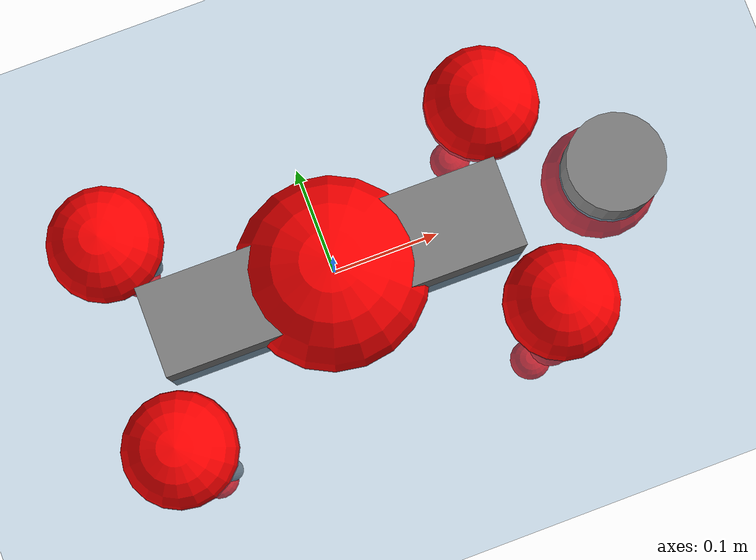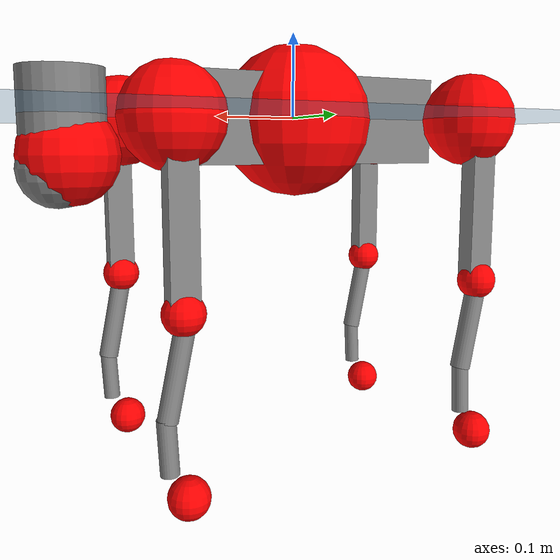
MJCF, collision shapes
<mujoco model="go2">
  <compiler angle="radian" assetdir="assets" balanceinertia="true" inertiafromgeom="false"/>

  <option timestep="0.005" density="1.2" viscosity="2e-05"/>

  <size nkey="1"/>

  <visual>
    <quality shadowsize="8192"/>
    <map shadowclip="0.5"/>
  </visual>

  <default>
    <default class="/">
      <geom contype="0" conaffinity="0" group="1" solref="-1000 -80"/>
      <site size="0.01 0.005 0.005" group="5"/>
      <general forcelimited="true" biastype="affine" gainprm="20" biasprm="0 -20 -0.5"/>
      <default class="go2">
        <joint armature="0.01" damping="0.01" frictionloss="0.2"/>
        <geom condim="1" margin="0.001"/>
        <default class="visual">
          <geom type="mesh" group="2"/>
        </default>
        <default class="collision">
          <geom group="3"/>
          <default class="foot">
            <geom size="0.022 0 0" condim="6" priority="1" friction="0.8 0.02 0.01" solimp="0.015 1 0.022"/>
          </default>
        </default>
        <default class="reward_collision_sphere">
          <geom group="5" rgba="1 0 0 1"/>
        </default>
      </default>
    </default>
  </default>

  <asset>
    <texture type="skybox" colorspace="auto" name="//unnamed_texture_0" builtin="gradient" rgb1="0.95 0.95 0.95" rgb2="0.95 0.95 0.95" width="100" height="600"/>
    <texture type="2d" colorspace="auto" name="texplane" builtin="checker" rgb1="0.345 0.575 0.748" rgb2="0.345 0.575 0.748" markrgb="1 1 1" width="512" height="512"/>
    <material name="MatPlane" class="/" texture="texplane" texuniform="true" texrepeat="2 2" specular="0.9"/>
    <material name="metal" class="/" rgba="0.9 0.95 0.95 1"/>
    <material name="black" class="/" rgba="0 0 0 1"/>
    <material name="white" class="/"/>
    <material name="gray" class="/" rgba="0.671705 0.692426 0.77427 1"/>
    <mesh name="base_0" class="/" file="base_0.obj"/>
    <mesh name="base_1" class="/" file="base_1.obj"/>
    <mesh name="base_2" class="/" file="base_2.obj"/>
    <mesh name="base_3" class="/" file="base_3.obj"/>
    <mesh name="base_4" class="/" file="base_4.obj"/>
    <mesh name="hip_0" class="/" file="hip_0.obj"/>
    <mesh name="hip_1" class="/" file="hip_1.obj"/>
    <mesh name="thigh_0" class="/" file="thigh_0.obj"/>
    <mesh name="thigh_1" class="/" file="thigh_1.obj"/>
    <mesh name="thigh_mirror_0" class="/" file="thigh_mirror_0.obj"/>
    <mesh name="thigh_mirror_1" class="/" file="thigh_mirror_1.obj"/>
    <mesh name="calf_0" class="/" file="calf_0.obj"/>
    <mesh name="calf_1" class="/" file="calf_1.obj"/>
    <mesh name="calf_mirror_0" class="/" file="calf_mirror_0.obj"/>
    <mesh name="calf_mirror_1" class="/" file="calf_mirror_1.obj"/>
    <mesh name="foot" class="/" file="foot.obj"/>
  </asset>

  <worldbody>
    <geom name="floor" class="/" size="100 100 0.125" type="plane" group="0" material="MatPlane"/>
    <light name="toplight_shadow" class="/" pos="0 0 5" dir="0.0990148 0.0990148 -0.990148" type="directional" ambient="0.04 0.04 0.04" diffuse="0.55 0.55 0.55" specular="0.12 0.12 0.12"/>
    <light name="toplight_fill" class="/" pos="0 0 5" dir="0.0990148 0.0990148 -0.990148" type="directional" castshadow="false" ambient="0.04 0.04 0.04" diffuse="0.3 0.3 0.3" specular="0.08 0.08 0.08"/>
    <body name="trunk" childclass="go2" pos="-0.00233068 0.000112466 -0.002814" quat="0.999999 8.23017e-06 0.00015246 -0.00131018">
      <inertial pos="0.0171696 0.0024112 -0.00585744" quat="-0.00902662 0.713229 -0.00336538 0.700865" mass="5.2058" diaginertia="0.0858153 0.046751 0.0147762"/>
      <joint name="//unnamed_joint_0" type="free" armature="0" damping="0" frictionloss="0"/>
      <geom name="//unnamed_geom_1" class="visual" material="black" mesh="base_0"/>
      <geom name="//unnamed_geom_2" class="visual" material="black" mesh="base_1"/>
      <geom name="//unnamed_geom_3" class="visual" material="black" mesh="base_2"/>
      <geom name="//unnamed_geom_4" class="visual" material="white" mesh="base_3"/>
      <geom name="//unnamed_geom_5" class="visual" material="gray" mesh="base_4"/>
      <geom name="trunk_1" class="collision" size="0.170573 0.042394 0.0516889" type="box"/>
      <geom name="trunk_2" class="collision" size="0.0453411 0.040807" pos="0.272031 0 0.00903261" type="cylinder"/>
      <geom name="trunk_3" class="collision" size="0.0426207" pos="0.279667 0 -0.0541957"/>
      <geom name="//unnamed_geom_9" class="reward_collision_sphere" size="0.0906823"/>
      <geom name="//unnamed_geom_10" class="reward_collision_sphere" size="0.0544094" pos="0.267258 0 -0.0406468"/>
      <site name="imu" pos="-0.0104367 0.0036698 0.0260672" size="0.00906823"/>
      <camera name="track" pos="0 -1.72543 0" quat="0.707107 0.707107 0 0" mode="trackcom"/>
      <camera name="ego_camera" pos="0.297802 0 0.0406468" quat="-0.5 -0.5 0.5 0.5"/>
      <body name="FL_hip" pos="0.184324 0.0400206 -0.00249571" quat="1 4.64847e-05 -4.12269e-05 1.64282e-05">
        <inertial pos="-0.00797778 0.00106385 -0.00182235" quat="0.494923 0.501388 0.49777 0.505852" mass="0.507955" diaginertia="0.000704111 0.000288054 0.000300607"/>
        <joint name="FL_hip_joint" pos="0 0 0" axis="0.99997 -0.00635173 0.0043667" range="-1.03386 1.0377" armature="0.010076" damping="0.0120742" frictionloss="0.179127"/>
        <geom name="//unnamed_geom_11" class="visual" material="metal" mesh="hip_0"/>
        <geom name="//unnamed_geom_12" class="visual" material="gray" mesh="hip_1"/>
        <geom name="//unnamed_geom_13" class="collision" size="0.0417139 0.0181365" pos="0 0.069017 0" quat="0.707107 0.707107 0 0" type="cylinder"/>
        <geom name="//unnamed_geom_14" class="reward_collision_sphere" size="0.0544094" pos="0 0.0603899 0"/>
        <body name="FL_thigh" pos="0.00063575 0.0816338 -0.00201302" quat="1 -0.000465277 -6.39972e-05 -0.00018785">
          <inertial pos="-0.00328545 -0.0196786 -0.0287815" quat="0.828007 0.0928856 -0.0152196 0.552761" mass="0.841885" diaginertia="0.00468625 0.00266018 0.000527165"/>
          <joint name="FL_thigh_joint" pos="0 0 0" axis="0.0154086 0.999791 0.0134568" stiffness="0.0147205" range="-1.55902 3.48001" armature="0.00785058" damping="0.01327" frictionloss="0.179767"/>
          <geom name="//unnamed_geom_15" class="visual" material="metal" mesh="thigh_0"/>
          <geom name="//unnamed_geom_16" class="visual" material="gray" mesh="thigh_1"/>
          <geom name="//unnamed_geom_17" class="collision" size="0.0965766 0.0111086 0.015416" pos="0 0 -0.0961973" quat="0.707107 0 0.707107 0" type="box"/>
          <body name="FL_calf" pos="-0.000696198 7.09504e-05 -0.190255" quat="1 -1.70791e-05 -0.000207906 0.000194671">
            <inertial pos="0.00391119 -0.00325609 -0.125141" quat="0.709831 -0.000185942 -0.00568646 0.704349" mass="0.179971" diaginertia="0.00120628 0.000682209 3.18625e-05"/>
            <joint name="FL_calf_joint" pos="0 0 0" axis="0.0012354 0.999984 -0.00560994" stiffness="0.00978321" range="-2.67381 -0.860657" armature="0.00898135" damping="0.00815334" frictionloss="0.183152"/>
            <geom name="//unnamed_geom_18" class="visual" material="gray" mesh="calf_0"/>
            <geom name="//unnamed_geom_19" class="visual" material="black" mesh="calf_1"/>
            <geom name="FL_calf0" class="collision" size="0.0108819 0.0544094" pos="0.00763596 0 -0.0541957" quat="0.994493 0 -0.104807 0" type="cylinder"/>
            <geom name="//unnamed_geom_21" class="collision" size="0.00997505 0.0294717" pos="0.0190899 0 -0.133683" quat="0.999688 0 0.0249974 0" type="cylinder"/>
            <geom name="//unnamed_geom_22" class="visual" pos="0 0 -0.192395" quat="1 0 0 0" material="black" mesh="foot"/>
            <geom name="FL_foot" class="foot" size="0.0206472" pos="-0.00190899 0 -0.192395"/>
            <geom name="//unnamed_geom_24" class="reward_collision_sphere" size="0.0226706"/>
            <geom name="//unnamed_geom_25" class="reward_collision_sphere" size="0.0226706" pos="-0.00190899 0 -0.192395"/>
            <site name="FL_foot" class="foot" pos="-0.00190899 0 -0.192395" size="0.00906823"/>
          </body>
        </body>
      </body>
      <body name="FR_hip" pos="0.187513 -0.0371128 0.000407084" quat="1 -0.000507906 0.000137943 -0.00012178">
        <inertial pos="-0.00674362 -0.00404084 -0.00142512" quat="0.499293 0.505801 0.496763 0.498095" mass="0.504098" diaginertia="0.000678044 0.000295305 0.000292153"/>
        <joint name="FR_hip_joint" pos="0 0 0" axis="0.999999 0.000920209 -0.000625068" range="-1.00372 1.03009" armature="0.00898717" damping="0.0149974" frictionloss="0.202159"/>
        <geom name="//unnamed_geom_26" class="visual" pos="0 -3.53244e-10 -1.51514e-08" quat="4.63268e-05 1 0 0" material="metal" mesh="hip_0"/>
        <geom name="//unnamed_geom_27" class="visual" pos="0 -5.72651e-10 3.74752e-08" quat="4.63268e-05 1 0 0" material="gray" mesh="hip_1"/>
        <geom name="//unnamed_geom_28" class="collision" size="0.0417139 0.0181365" pos="0 -0.069017 0" quat="0.707107 0.707107 0 0" type="cylinder"/>
        <geom name="//unnamed_geom_29" class="reward_collision_sphere" size="0.0544094" pos="0 -0.0603899 0"/>
        <body name="FR_thigh" pos="0.00280037 -0.0825238 -0.00123642" quat="0.999999 0.000669956 0.000759395 -0.000457529">
          <inertial pos="-0.00306444 0.0191692 -0.0296894" quat="0.548102 -0.0219551 0.0859398 0.831695" mass="0.885576" diaginertia="0.00456848 0.00280876 0.000531495"/>
          <joint name="FR_thigh_joint" pos="0 0 0" axis="0.0042347 -0.99999 0.00165785" range="-3.49755 1.60801" armature="0.00832149" damping="0.0104232" frictionloss="0.193061"/>
          <geom name="//unnamed_geom_30" class="visual" material="metal" mesh="thigh_mirror_0"/>
          <geom name="//unnamed_geom_31" class="visual" material="gray" mesh="thigh_mirror_1"/>
          <geom name="//unnamed_geom_32" class="collision" size="0.0965766 0.0111086 0.015416" pos="0 0 -0.0961973" quat="0.707107 0 0.707107 0" type="box"/>
          <body name="FR_calf" pos="-0.000636013 -0.00135141 -0.191264" quat="1 8.7797e-05 -9.33182e-05 -0.000132436">
            <inertial pos="0.00696359 5.21579e-05 -0.128718" quat="0.710263 -0.0141805 0.00468985 0.703778" mass="0.17769" diaginertia="0.00123491 0.000702904 3.20149e-05"/>
            <joint name="FR_calf_joint" pos="0 0 0" axis="-0.00241097 -0.999908 0.013341" range="0.825601 2.66279" armature="0.0100666" damping="0.0137179" frictionloss="0.179474"/>
            <geom name="//unnamed_geom_33" class="visual" material="gray" mesh="calf_mirror_0"/>
            <geom name="//unnamed_geom_34" class="visual" material="black" mesh="calf_mirror_1"/>
            <geom name="FR_calf0" class="collision" size="0.0117887 0.0544094" pos="0.00954495 0 -0.0541957" quat="0.995004 0 -0.0998334 0" type="cylinder"/>
            <geom name="//unnamed_geom_36" class="collision" size="0.00997505 0.0294717" pos="0.0190899 0 -0.133683" quat="0.999688 0 0.0249974 0" type="cylinder"/>
            <geom name="//unnamed_geom_37" class="visual" pos="0 0 -0.192395" quat="1 0 0 0" material="black" mesh="foot"/>
            <geom name="FR_foot" class="foot" size="0.0189847" pos="-0.00190899 0 -0.192395"/>
            <geom name="//unnamed_geom_39" class="reward_collision_sphere" size="0.0226706"/>
            <geom name="//unnamed_geom_40" class="reward_collision_sphere" size="0.0226706" pos="-0.00190899 0 -0.192395"/>
            <site name="FR_foot" class="foot" pos="-0.00190899 0 -0.192395" size="0.00906823"/>
          </body>
        </body>
      </body>
      <body name="RL_hip" pos="-0.18572 0.0367448 0.000595937" quat="1 -0.000100073 0.000241368 0.000147886">
        <inertial pos="0.00490436 0.00240923 0.000207765" quat="0.505447 0.498372 0.49701 0.49913" mass="0.511865" diaginertia="0.000713609 0.000276662 0.000286555"/>
        <joint name="RL_hip_joint" pos="0 0 0" axis="-1 -6.32152e-05 2.76228e-05" stiffness="0.00837884" range="-1.05485 1.06487" armature="0.0091193" damping="0" frictionloss="0.18922"/>
        <geom name="//unnamed_geom_41" class="visual" pos="-4.46322e-10 0 -8.74893e-08" quat="4.63268e-05 0 1 0" material="metal" mesh="hip_0"/>
        <geom name="//unnamed_geom_42" class="visual" pos="-7.23541e-10 0 -7.75906e-08" quat="4.63268e-05 0 1 0" material="gray" mesh="hip_1"/>
        <geom name="//unnamed_geom_43" class="collision" size="0.0417139 0.0181365" pos="0 0.069017 0" quat="0.707107 0.707107 0 0" type="cylinder"/>
        <geom name="//unnamed_geom_44" class="reward_collision_sphere" size="0.0544094" pos="0 0.0603899 0"/>
        <body name="RL_thigh" pos="-0.000983652 0.0795065 0.00216475" quat="1 2.21816e-05 -8.71719e-06 6.33524e-05">
          <inertial pos="-0.00468337 -0.0191964 -0.0289071" quat="0.829094 0.0881427 -0.0233913 0.551622" mass="0.880009" diaginertia="0.00484853 0.00285212 0.000540919"/>
          <joint name="RL_thigh_joint" pos="0 0 0" axis="0.00790742 0.999964 -0.00317428" range="-0.540237 4.51614" armature="0.0101485" damping="0.00161946" frictionloss="0.185589"/>
          <geom name="//unnamed_geom_45" class="visual" material="metal" mesh="thigh_0"/>
          <geom name="//unnamed_geom_46" class="visual" material="gray" mesh="thigh_1"/>
          <geom name="//unnamed_geom_47" class="collision" size="0.0965766 0.0111086 0.015416" pos="0 0 -0.0961973" quat="0.707107 0 0.707107 0" type="box"/>
          <body name="RL_calf" pos="-0.0021306 0.00182823 -0.194945" quat="1 3.03709e-05 -0.000165528 0.00052029">
            <inertial pos="0.00864894 -0.00329073 -0.125237" quat="0.709821 0.00347146 -0.013213 0.704249" mass="0.175923" diaginertia="0.00117838 0.000725534 3.11535e-05"/>
            <joint name="RL_calf_joint" pos="0 0 0" axis="0.00108059 0.999979 0.00640651" stiffness="0.00575979" range="-2.68104 -0.834605" armature="0.00903032" damping="0" frictionloss="0.206305"/>
            <geom name="//unnamed_geom_48" class="visual" material="gray" mesh="calf_0"/>
            <geom name="//unnamed_geom_49" class="visual" material="black" mesh="calf_1"/>
            <geom name="RL_calf0" class="collision" size="0.0117887 0.0544094" pos="0.00954495 0 -0.0541957" quat="0.995004 0 -0.0998334 0" type="cylinder"/>
            <geom name="//unnamed_geom_51" class="collision" size="0.00997505 0.0294717" pos="0.0190899 0 -0.133683" quat="0.999688 0 0.0249974 0" type="cylinder"/>
            <geom name="//unnamed_geom_52" class="visual" pos="0 0 -0.192395" quat="1 0 0 0" material="black" mesh="foot"/>
            <geom name="RL_foot" class="foot" size="0.0207702" pos="-0.00190899 0 -0.192395"/>
            <geom name="//unnamed_geom_54" class="reward_collision_sphere" size="0.0226706"/>
            <geom name="//unnamed_geom_55" class="reward_collision_sphere" size="0.0226706" pos="-0.00190899 0 -0.192395"/>
            <site name="RL_foot" class="foot" pos="-0.00190899 0 -0.192395" size="0.00906823"/>
          </body>
        </body>
      </body>
      <body name="RR_hip" pos="-0.184416 -0.0427196 -0.00154232" quat="0.999999 0.000975104 -0.000903142 -0.000638455">
        <inertial pos="0.00436712 -0.000423107 -0.00253923" quat="0.498745 0.497646 0.498595 0.50498" mass="0.524602" diaginertia="0.000698227 0.000282759 0.000288799"/>
        <joint name="RR_hip_joint" pos="0 0 0" axis="-0.999918 -0.00305003 0.0123985" range="-0.996062 1.01278" armature="0.00786125" damping="0.00806134" frictionloss="0.203155"/>
        <geom name="//unnamed_geom_56" class="visual" pos="4.43144e-10 -3.53244e-10 -7.2338e-08" quat="2.14617e-09 4.63268e-05 4.63268e-05 -1" material="metal" mesh="hip_0"/>
        <geom name="//unnamed_geom_57" class="visual" pos="7.314e-10 -5.72651e-10 -1.15066e-07" quat="2.14617e-09 4.63268e-05 4.63268e-05 -1" material="gray" mesh="hip_1"/>
        <geom name="//unnamed_geom_58" class="collision" size="0.0417139 0.0181365" pos="0 -0.069017 0" quat="0.707107 0.707107 0 0" type="cylinder"/>
        <geom name="//unnamed_geom_59" class="reward_collision_sphere" size="0.0544094" pos="0 -0.0603899 0"/>
        <body name="RR_thigh" pos="0.00103631 -0.0823696 -5.5448e-06" quat="1 8.9704e-05 -0.000183659 -0.000105752">
          <inertial pos="-0.00607135 0.0216503 -0.0296934" quat="0.550727 -0.0198869 0.0844002 0.830169" mass="0.823693" diaginertia="0.00477669 0.00275392 0.000528781"/>
          <joint name="RR_thigh_joint" pos="0 0 0" axis="0.0005584 -0.999999 0.00160355" stiffness="0.00590597" range="-4.54465 0.541825" armature="0.00876966" damping="0.0174082" frictionloss="0.16693"/>
          <geom name="//unnamed_geom_60" class="visual" material="metal" mesh="thigh_mirror_0"/>
          <geom name="//unnamed_geom_61" class="visual" material="gray" mesh="thigh_mirror_1"/>
          <geom name="//unnamed_geom_62" class="collision" size="0.0965766 0.0111086 0.015416" pos="0 0 -0.0961973" quat="0.707107 0 0.707107 0" type="box"/>
          <body name="RR_calf" pos="0.000231435 0.000179255 -0.19288" quat="1 0.000101944 1.99241e-05 -2.28739e-05">
            <inertial pos="0.00824259 0.000758461 -0.128428" quat="0.703119 -0.00531452 0.000688443 0.711052" mass="0.169686" diaginertia="0.00112748 0.000683439 3.05809e-05"/>
            <joint name="RR_calf_joint" pos="0 0 0" axis="-0.0019981 -0.999995 -0.00251859" range="0.850163 2.77896" armature="0.00794379" damping="0.01814" frictionloss="0.187339"/>
            <geom name="//unnamed_geom_63" class="visual" material="gray" mesh="calf_mirror_0"/>
            <geom name="//unnamed_geom_64" class="visual" material="black" mesh="calf_mirror_1"/>
            <geom name="RR_calf0" class="collision" size="0.0117887 0.0544094" pos="0.00954495 0 -0.0541957" quat="0.995004 0 -0.0998334 0" type="cylinder"/>
            <geom name="//unnamed_geom_66" class="collision" size="0.00997505 0.0294717" pos="0.0190899 0 -0.133683" quat="0.999688 0 0.0249974 0" type="cylinder"/>
            <geom name="//unnamed_geom_67" class="visual" pos="0 0 -0.192395" quat="1 0 0 0" material="black" mesh="foot"/>
            <geom name="RR_foot" class="foot" size="0.0169923" pos="-0.00190899 0 -0.192395"/>
            <geom name="//unnamed_geom_69" class="reward_collision_sphere" size="0.0226706"/>
            <geom name="//unnamed_geom_70" class="reward_collision_sphere" size="0.0226706" pos="-0.00190899 0 -0.192395"/>
            <site name="RR_foot" class="foot" pos="-0.00190899 0 -0.192395" size="0.00906823"/>
          </body>
        </body>
      </body>
    </body>
  </worldbody>

  <contact>
    <pair class="/" geom1="floor" geom2="FL_foot" name="//unnamed_contact_0"/>
    <pair class="/" geom1="floor" geom2="FR_foot" name="//unnamed_contact_1"/>
    <pair class="/" geom1="floor" geom2="RL_foot" name="//unnamed_contact_2"/>
    <pair class="/" geom1="floor" geom2="RR_foot" name="//unnamed_contact_3"/>
  </contact>

  <actuator>
    <general name="FL_hip" class="/" joint="FL_hip_joint" forcerange="-21.7427 21.7427" gainprm="17.3339" biasprm="0 -17.3339 -0.470343"/>
    <general name="FL_thigh" class="/" joint="FL_thigh_joint" forcerange="-22.579 22.579" gainprm="17.3339" biasprm="0 -17.3339 -0.470343"/>
    <general name="FL_calf" class="/" joint="FL_calf_joint" forcerange="-40.0287 40.0287" gainprm="17.3339" biasprm="0 -17.3339 -0.470343"/>
    <general name="FR_hip" class="/" joint="FR_hip_joint" forcerange="-20.9951 20.9951" gainprm="17.3339" biasprm="0 -17.3339 -0.470343"/>
    <general name="FR_thigh" class="/" joint="FR_thigh_joint" forcerange="-23.613 23.613" gainprm="17.3339" biasprm="0 -17.3339 -0.470343"/>
    <general name="FR_calf" class="/" joint="FR_calf_joint" forcerange="-38.6592 38.6592" gainprm="17.3339" biasprm="0 -17.3339 -0.470343"/>
    <general name="RL_hip" class="/" joint="RL_hip_joint" forcerange="-21.8244 21.8244" gainprm="17.3339" biasprm="0 -17.3339 -0.470343"/>
    <general name="RL_thigh" class="/" joint="RL_thigh_joint" forcerange="-23.7746 23.7746" gainprm="17.3339" biasprm="0 -17.3339 -0.470343"/>
    <general name="RL_calf" class="/" joint="RL_calf_joint" forcerange="-39.4878 39.4878" gainprm="17.3339" biasprm="0 -17.3339 -0.470343"/>
    <general name="RR_hip" class="/" joint="RR_hip_joint" forcerange="-22.3132 22.3132" gainprm="17.3339" biasprm="0 -17.3339 -0.470343"/>
    <general name="RR_thigh" class="/" joint="RR_thigh_joint" forcerange="-21.9257 21.9257" gainprm="17.3339" biasprm="0 -17.3339 -0.470343"/>
    <general name="RR_calf" class="/" joint="RR_calf_joint" forcerange="-38.3456 38.3456" gainprm="17.3339" biasprm="0 -17.3339 -0.470343"/>
  </actuator>

  <sensor>
    <gyro site="imu" name="imu_angular_velocity"/>
    <velocimeter site="imu" name="imu_linear_velocity"/>
    <framelinvel objtype="site" objname="FL_foot" name="FL_foot_global_linear_velocity"/>
    <framelinvel objtype="site" objname="FR_foot" name="FR_foot_global_linear_velocity"/>
    <framelinvel objtype="site" objname="RL_foot" name="RL_foot_global_linear_velocity"/>
    <framelinvel objtype="site" objname="RR_foot" name="RR_foot_global_linear_velocity"/>
  </sensor>

  <keyframe>
    <key name="home" qpos="0 0 0.325 1 0 0 0 0.1 0.8 -1.5 -0.1 -0.8 1.5 -0.1 0.8 -1.5 0.1 -0.8 1.5"/>
  </keyframe>
</mujoco>
